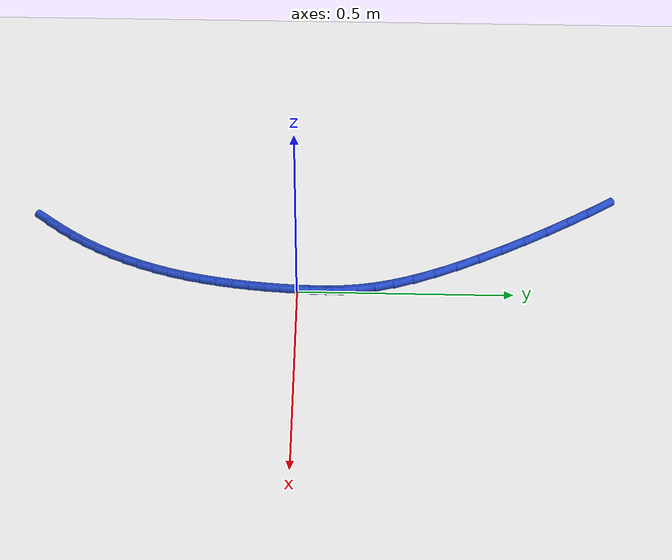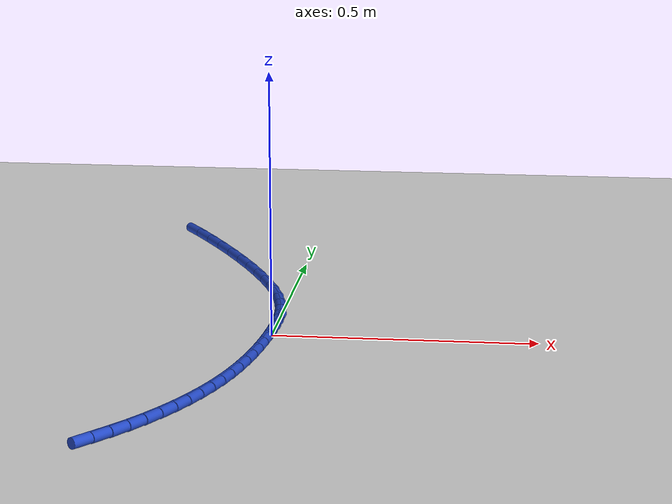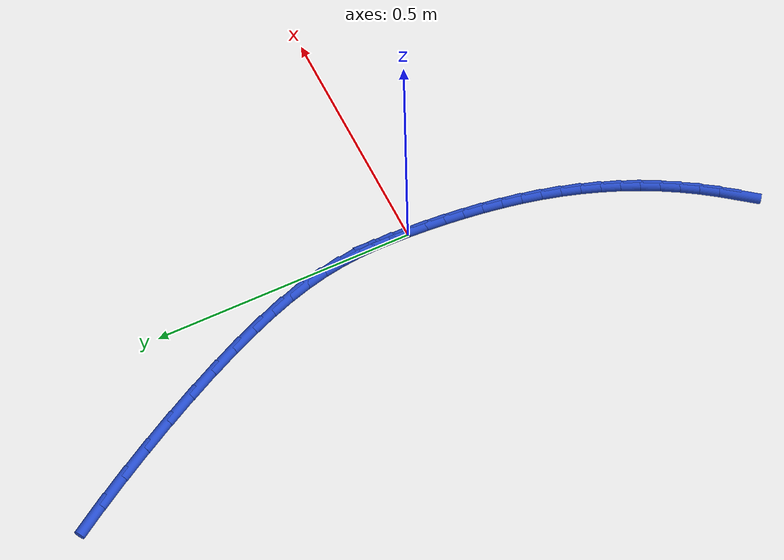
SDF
<sdf version="1.6">
 <world name="default">
  <model name="ground_plane">
   <static>1</static>
   <link name="link">
    <collision name="collision">
     <geometry><plane><normal>0 0 1</normal><size>100 100</size></plane></geometry>
     <surface><friction><ode><mu>100</mu><mu2>50</mu2></ode></friction></surface>
    </collision>
    <visual name="visual">
     <cast_shadows>0</cast_shadows>
     <geometry><plane><normal>0 0 1</normal><size>100 100</size></plane></geometry>
     <material>
      <script><uri>file://media/materials/scripts/gazebo.material</uri><name>Gazebo/WhiteGlow</name></script>
     </material>
    </visual>
   </link>
  </model>
  <model name="line">
   <link name="link_0">
    <pose>-2.3852447794681098e-18 -3.469446951953614e-17 0.01 0 1.57 1.536568361687277</pose>
    <collision name="collision">
     <geometry><cylinder><radius>0.01</radius><length>0.08</length></cylinder></geometry>
    </collision>
    <visual name="visual">
     <material>
      <script><name>Gazebo/Blue</name><uri>file://media/materials/scripts/gazebo.material</uri></script>
     </material>
     <geometry><cylinder><radius>0.01</radius><length>0.08</length></cylinder></geometry>
    </visual>
   </link>
   <link name="link_1">
    <pose>0.0012004082090740472 0.03505728102247837 0.01 0 1.57 1.5704771272439422</pose>
    <collision name="collision">
     <geometry><cylinder><radius>0.01</radius><length>0.08</length></cylinder></geometry>
    </collision>
    <visual name="visual">
     <material>
      <script><name>Gazebo/Blue</name><uri>file://media/materials/scripts/gazebo.material</uri></script>
     </material>
     <geometry><cylinder><radius>0.01</radius><length>0.08</length></cylinder></geometry>
    </visual>
   </link>
   <link name="link_2">
    <pose>0.0012114562269414874 0.06966891333582405 0.01 0 1.57 -1.5240608467342291</pose>
    <collision name="collision">
     <geometry><cylinder><radius>0.01</radius><length>0.08</length></cylinder></geometry>
    </collision>
    <visual name="visual">
     <material>
      <script><name>Gazebo/Blue</name><uri>file://media/materials/scripts/gazebo.material</uri></script>
     </material>
     <geometry><cylinder><radius>0.01</radius><length>0.08</length></cylinder></geometry>
    </visual>
   </link>
   <link name="link_3">
    <pose>-0.00041627181827382734 0.10447208157554808 0.01 0 1.57 -1.4668855793598907</pose>
    <collision name="collision">
     <geometry><cylinder><radius>0.01</radius><length>0.08</length></cylinder></geometry>
    </collision>
    <visual name="visual">
     <material>
      <script><name>Gazebo/Blue</name><uri>file://media/materials/scripts/gazebo.material</uri></script>
     </material>
     <geometry><cylinder><radius>0.01</radius><length>0.08</length></cylinder></geometry>
    </visual>
   </link>
   <link name="link_4">
    <pose>-0.004132191798448034 0.14010397037716163 0.01 0 1.57 -1.4037975720328413</pose>
    <collision name="collision">
     <geometry><cylinder><radius>0.01</radius><length>0.08</length></cylinder></geometry>
    </collision>
    <visual name="visual">
     <material>
      <script><name>Gazebo/Blue</name><uri>file://media/materials/scripts/gazebo.material</uri></script>
     </material>
     <geometry><cylinder><radius>0.01</radius><length>0.08</length></cylinder></geometry>
    </visual>
   </link>
   <link name="link_5">
    <pose>-0.010385719585457281 0.1772017643761758 0.01 0 1.57 -1.3392992779858215</pose>
    <collision name="collision">
     <geometry><cylinder><radius>0.01</radius><length>0.08</length></cylinder></geometry>
    </collision>
    <visual name="visual">
     <material>
      <script><name>Gazebo/Blue</name><uri>file://media/materials/scripts/gazebo.material</uri></script>
     </material>
     <geometry><cylinder><radius>0.01</radius><length>0.08</length></cylinder></geometry>
    </visual>
   </link>
   <link name="link_6">
    <pose>-0.019626271051177705 0.21640264820810165 0.01 0 1.57 -1.27727056453285</pose>
    <collision name="collision">
     <geometry><cylinder><radius>0.01</radius><length>0.08</length></cylinder></geometry>
    </collision>
    <visual name="visual">
     <material>
      <script><name>Gazebo/Blue</name><uri>file://media/materials/scripts/gazebo.material</uri></script>
     </material>
     <geometry><cylinder><radius>0.01</radius><length>0.08</length></cylinder></geometry>
    </visual>
   </link>
   <link name="link_7">
    <pose>-0.03230326206748544 0.25834380650845035 0.01 0 1.57 -1.2205641338085151</pose>
    <collision name="collision">
     <geometry><cylinder><radius>0.01</radius><length>0.08</length></cylinder></geometry>
    </collision>
    <visual name="visual">
     <material>
      <script><name>Gazebo/Blue</name><uri>file://media/materials/scripts/gazebo.material</uri></script>
     </material>
     <geometry><cylinder><radius>0.01</radius><length>0.08</length></cylinder></geometry>
    </visual>
   </link>
   <link name="link_8">
    <pose>-0.04884852828851498 0.3036371119326895 0.01 0 1.57 -1.1735904179650758</pose>
    <collision name="collision">
     <geometry><cylinder><radius>0.01</radius><length>0.08</length></cylinder></geometry>
    </collision>
    <visual name="visual">
     <material>
      <script><name>Gazebo/Blue</name><uri>file://media/materials/scripts/gazebo.material</uri></script>
     </material>
     <geometry><cylinder><radius>0.01</radius><length>0.08</length></cylinder></geometry>
    </visual>
   </link>
   <link name="link_9">
    <pose>-0.06923492894647816 0.35223360333986514 0.01 0 1.57 -1.1367071508104774</pose>
    <collision name="collision">
     <geometry><cylinder><radius>0.01</radius><length>0.08</length></cylinder></geometry>
    </collision>
    <visual name="visual">
     <material>
      <script><name>Gazebo/Blue</name><uri>file://media/materials/scripts/gazebo.material</uri></script>
     </material>
     <geometry><cylinder><radius>0.01</radius><length>0.08</length></cylinder></geometry>
    </visual>
   </link>
   <link name="link_10">
    <pose>-0.09294377362127791 0.4033765868878439 0.01 0 1.57 -1.1065521909593512</pose>
    <collision name="collision">
     <geometry><cylinder><radius>0.01</radius><length>0.08</length></cylinder></geometry>
    </collision>
    <visual name="visual">
     <material>
      <script><name>Gazebo/Blue</name><uri>file://media/materials/scripts/gazebo.material</uri></script>
     </material>
     <geometry><cylinder><radius>0.01</radius><length>0.08</length></cylinder></geometry>
    </visual>
   </link>
   <link name="link_11">
    <pose>-0.11943226742696403 0.456274663148498 0.01 0 1.57 -1.0808524294786641</pose>
    <collision name="collision">
     <geometry><cylinder><radius>0.01</radius><length>0.08</length></cylinder></geometry>
    </collision>
    <visual name="visual">
     <material>
      <script><name>Gazebo/Blue</name><uri>file://media/materials/scripts/gazebo.material</uri></script>
     </material>
     <geometry><cylinder><radius>0.01</radius><length>0.08</length></cylinder></geometry>
    </visual>
   </link>
   <link name="link_12">
    <pose>-0.1481576154775864 0.5101364326936998 0.01 0 1.57 -1.0580520031457787</pose>
    <collision name="collision">
     <geometry><cylinder><radius>0.01</radius><length>0.08</length></cylinder></geometry>
    </collision>
    <visual name="visual">
     <material>
      <script><name>Gazebo/Blue</name><uri>file://media/materials/scripts/gazebo.material</uri></script>
     </material>
     <geometry><cylinder><radius>0.01</radius><length>0.08</length></cylinder></geometry>
    </visual>
   </link>
   <link name="link_13">
    <pose>-0.17857702288719468 0.5641704960953212 0.01 0 1.57 -1.0369870157645538</pose>
    <collision name="collision">
     <geometry><cylinder><radius>0.01</radius><length>0.08</length></cylinder></geometry>
    </collision>
    <visual name="visual">
     <material>
      <script><name>Gazebo/Blue</name><uri>file://media/materials/scripts/gazebo.material</uri></script>
     </material>
     <geometry><cylinder><radius>0.01</radius><length>0.08</length></cylinder></geometry>
    </visual>
   </link>
   <link name="link_14">
    <pose>-0.21014769476983877 0.6175854539252348 0.01 0 1.57 -1.016684746605305</pose>
    <collision name="collision">
     <geometry><cylinder><radius>0.01</radius><length>0.08</length></cylinder></geometry>
    </collision>
    <visual name="visual">
     <material>
      <script><name>Gazebo/Blue</name><uri>file://media/materials/scripts/gazebo.material</uri></script>
     </material>
     <geometry><cylinder><radius>0.01</radius><length>0.08</length></cylinder></geometry>
    </visual>
   </link>
   <link name="link_15">
    <pose>-0.2423268362395684 0.6695899067553124 0.01 0 1.57 -0.99621360401622</pose>
    <collision name="collision">
     <geometry><cylinder><radius>0.01</radius><length>0.08</length></cylinder></geometry>
    </collision>
    <visual name="visual">
     <material>
      <script><name>Gazebo/Blue</name><uri>file://media/materials/scripts/gazebo.material</uri></script>
     </material>
     <geometry><cylinder><radius>0.01</radius><length>0.08</length></cylinder></geometry>
    </visual>
   </link>
   <link name="link_16">
    <pose>-0.2745716524104334 0.7193924551574266 0.01 0 1.57 -0.9745345805380871</pose>
    <collision name="collision">
     <geometry><cylinder><radius>0.01</radius><length>0.08</length></cylinder></geometry>
    </collision>
    <visual name="visual">
     <material>
      <script><name>Gazebo/Blue</name><uri>file://media/materials/scripts/gazebo.material</uri></script>
     </material>
     <geometry><cylinder><radius>0.01</radius><length>0.08</length></cylinder></geometry>
    </visual>
   </link>
   <link name="link_203">
    <pose>-0.20289735376096224 -0.5993440263563532 0.01 0 1.57 0.9063151022787703</pose>
    <collision name="collision">
     <geometry><cylinder><radius>0.01</radius><length>0.08</length></cylinder></geometry>
    </collision>
    <visual name="visual">
     <material>
      <script><name>Gazebo/Blue</name><uri>file://media/materials/scripts/gazebo.material</uri></script>
     </material>
     <geometry><cylinder><radius>0.01</radius><length>0.08</length></cylinder></geometry>
    </visual>
   </link>
   <link name="link_204">
    <pose>-0.17961356380585672 -0.5696191712643123 0.01 0 1.57 0.9479238183186444</pose>
    <collision name="collision">
     <geometry><cylinder><radius>0.01</radius><length>0.08</length></cylinder></geometry>
    </collision>
    <visual name="visual">
     <material>
      <script><name>Gazebo/Blue</name><uri>file://media/materials/scripts/gazebo.material</uri></script>
     </material>
     <geometry><cylinder><radius>0.01</radius><length>0.08</length></cylinder></geometry>
    </visual>
   </link>
   <link name="link_205">
    <pose>-0.1576266381050736 -0.539007560793921 0.01 0 1.57 0.9949693671722737</pose>
    <collision name="collision">
     <geometry><cylinder><radius>0.01</radius><length>0.08</length></cylinder></geometry>
    </collision>
    <visual name="visual">
     <material>
      <script><name>Gazebo/Blue</name><uri>file://media/materials/scripts/gazebo.material</uri></script>
     </material>
     <geometry><cylinder><radius>0.01</radius><length>0.08</length></cylinder></geometry>
    </visual>
   </link>
   <link name="link_206">
    <pose>-0.13710704897695417 -0.5074010526343191 0.01 0 1.57 1.0422748961181398</pose>
    <collision name="collision">
     <geometry><cylinder><radius>0.01</radius><length>0.08</length></cylinder></geometry>
    </collision>
    <visual name="visual">
     <material>
      <script><name>Gazebo/Blue</name><uri>file://media/materials/scripts/gazebo.material</uri></script>
     </material>
     <geometry><cylinder><radius>0.01</radius><length>0.08</length></cylinder></geometry>
    </visual>
   </link>
   <link name="link_207">
    <pose>-0.11808498806603555 -0.4748252692505067 0.01 0 1.57 1.0887178488343559</pose>
    <collision name="collision">
     <geometry><cylinder><radius>0.01</radius><length>0.08</length></cylinder></geometry>
    </collision>
    <visual name="visual">
     <material>
      <script><name>Gazebo/Blue</name><uri>file://media/materials/scripts/gazebo.material</uri></script>
     </material>
     <geometry><cylinder><radius>0.01</radius><length>0.08</length></cylinder></geometry>
    </visual>
   </link>
   <link name="link_208">
    <pose>-0.10056069990168612 -0.44133438920890716 0.01 0 1.57 1.134278374754721</pose>
    <collision name="collision">
     <geometry><cylinder><radius>0.01</radius><length>0.08</length></cylinder></geometry>
    </collision>
    <visual name="visual">
     <material>
      <script><name>Gazebo/Blue</name><uri>file://media/materials/scripts/gazebo.material</uri></script>
     </material>
     <geometry><cylinder><radius>0.01</radius><length>0.08</length></cylinder></geometry>
    </visual>
   </link>
   <link name="link_209">
    <pose>-0.08453442901327271 -0.4069825910759407 0.01 0 1.57 1.1789505052005982</pose>
    <collision name="collision">
     <geometry><cylinder><radius>0.01</radius><length>0.08</length></cylinder></geometry>
    </collision>
    <visual name="visual">
     <material>
      <script><name>Gazebo/Blue</name><uri>file://media/materials/scripts/gazebo.material</uri></script>
     </material>
     <geometry><cylinder><radius>0.01</radius><length>0.08</length></cylinder></geometry>
    </visual>
   </link>
   <link name="link_210">
    <pose>-0.07000641993016275 -0.3718240534180293 0.01 0 1.57 1.2227406788263113</pose>
    <collision name="collision">
     <geometry><cylinder><radius>0.01</radius><length>0.08</length></cylinder></geometry>
    </collision>
    <visual name="visual">
     <material>
      <script><name>Gazebo/Blue</name><uri>file://media/materials/scripts/gazebo.material</uri></script>
     </material>
     <geometry><cylinder><radius>0.01</radius><length>0.08</length></cylinder></geometry>
    </visual>
   </link>
   <link name="link_211">
    <pose>-0.0569769171817236 -0.3359129548015943 0.01 0 1.57 1.2656661826491518</pose>
    <collision name="collision">
     <geometry><cylinder><radius>0.01</radius><length>0.08</length></cylinder></geometry>
    </collision>
    <visual name="visual">
     <material>
      <script><name>Gazebo/Blue</name><uri>file://media/materials/scripts/gazebo.material</uri></script>
     </material>
     <geometry><cylinder><radius>0.01</radius><length>0.08</length></cylinder></geometry>
    </visual>
   </link>
   <link name="link_212">
    <pose>-0.045446165297322406 -0.29930347379305616 0.01 0 1.57 1.307663954676893</pose>
    <collision name="collision">
     <geometry><cylinder><radius>0.01</radius><length>0.08</length></cylinder></geometry>
    </collision>
    <visual name="visual">
     <material>
      <script><name>Gazebo/Blue</name><uri>file://media/materials/scripts/gazebo.material</uri></script>
     </material>
     <geometry><cylinder><radius>0.01</radius><length>0.08</length></cylinder></geometry>
    </visual>
   </link>
   <link name="link_213">
    <pose>-0.03541195238888967 -0.26205396453347507 0.01 0 1.57 1.3470342131046116</pose>
    <collision name="collision">
     <geometry><cylinder><radius>0.01</radius><length>0.08</length></cylinder></geometry>
    </collision>
    <visual name="visual">
     <material>
      <script><name>Gazebo/Blue</name><uri>file://media/materials/scripts/gazebo.material</uri></script>
     </material>
     <geometry><cylinder><radius>0.01</radius><length>0.08</length></cylinder></geometry>
    </visual>
   </link>
   <link name="link_214">
    <pose>-0.026821974143796033 -0.22430793145404096 0.01 0 1.57 1.3824986068345817</pose>
    <collision name="collision">
     <geometry><cylinder><radius>0.01</radius><length>0.08</length></cylinder></geometry>
    </collision>
    <visual name="visual">
     <material>
      <script><name>Gazebo/Blue</name><uri>file://media/materials/scripts/gazebo.material</uri></script>
     </material>
     <geometry><cylinder><radius>0.01</radius><length>0.08</length></cylinder></geometry>
    </visual>
   </link>
   <link name="link_215">
    <pose>-0.019577153269955468 -0.18628838667211078 0.01 0 1.57 1.414451955444861</pose>
    <collision name="collision">
     <geometry><cylinder><radius>0.01</radius><length>0.08</length></cylinder></geometry>
    </collision>
    <visual name="visual">
     <material>
      <script><name>Gazebo/Blue</name><uri>file://media/materials/scripts/gazebo.material</uri></script>
     </material>
     <geometry><cylinder><radius>0.01</radius><length>0.08</length></cylinder></geometry>
    </visual>
   </link>
   <link name="link_216">
    <pose>-0.013576620925380723 -0.14822138769554025 0.01 0 1.57 1.4432964791874452</pose>
    <collision name="collision">
     <geometry><cylinder><radius>0.01</radius><length>0.08</length></cylinder></geometry>
    </collision>
    <visual name="visual">
     <material>
      <script><name>Gazebo/Blue</name><uri>file://media/materials/scripts/gazebo.material</uri></script>
     </material>
     <geometry><cylinder><radius>0.01</radius><length>0.08</length></cylinder></geometry>
    </visual>
   </link>
   <link name="link_217">
    <pose>-0.008719508268085006 -0.1103329920321879 0.01 0 1.57 1.4693796767742267</pose>
    <collision name="collision">
     <geometry><cylinder><radius>0.01</radius><length>0.08</length></cylinder></geometry>
    </collision>
    <visual name="visual">
     <material>
      <script><name>Gazebo/Blue</name><uri>file://media/materials/scripts/gazebo.material</uri></script>
     </material>
     <geometry><cylinder><radius>0.01</radius><length>0.08</length></cylinder></geometry>
    </visual>
   </link>
   <link name="link_218">
    <pose>-0.00490494645608105 -0.07284925718990944 0.01 0 1.57 1.4929985855008832</pose>
    <collision name="collision">
     <geometry><cylinder><radius>0.01</radius><length>0.08</length></cylinder></geometry>
    </collision>
    <visual name="visual">
     <material>
      <script><name>Gazebo/Blue</name><uri>file://media/materials/scripts/gazebo.material</uri></script>
     </material>
     <geometry><cylinder><radius>0.01</radius><length>0.08</length></cylinder></geometry>
    </visual>
   </link>
   <link name="link_219">
    <pose>-0.0020320666473817566 -0.03599624067656147 0.01 0 1.57 1.5144039897906345</pose>
    <collision name="collision">
     <geometry><cylinder><radius>0.01</radius><length>0.08</length></cylinder></geometry>
    </collision>
    <visual name="visual">
     <material>
      <script><name>Gazebo/Blue</name><uri>file://media/materials/scripts/gazebo.material</uri></script>
     </material>
     <geometry><cylinder><radius>0.01</radius><length>0.08</length></cylinder></geometry>
    </visual>
   </link>
   <link name="link_220">
    <pose>1.463672932855431e-17 1.8041124150158794e-16 0.01 0 1.57 1.5338038653100574</pose>
    <collision name="collision">
     <geometry><cylinder><radius>0.01</radius><length>0.08</length></cylinder></geometry>
    </collision>
    <visual name="visual">
     <material>
      <script><name>Gazebo/Blue</name><uri>file://media/materials/scripts/gazebo.material</uri></script>
     </material>
     <geometry><cylinder><radius>0.01</radius><length>0.08</length></cylinder></geometry>
    </visual>
   </link>
   <link name="link_221">
    <pose>0.0012921223280512398 0.03491340733191628 0.01 0 1.57 1.5513654666222692</pose>
    <collision name="collision">
     <geometry><cylinder><radius>0.01</radius><length>0.08</length></cylinder></geometry>
    </collision>
    <visual name="visual">
     <material>
      <script><name>Gazebo/Blue</name><uri>file://media/materials/scripts/gazebo.material</uri></script>
     </material>
     <geometry><cylinder><radius>0.01</radius><length>0.08</length></cylinder></geometry>
    </visual>
   </link>
   <link name="link_222">
    <pose>0.0019451691787591475 0.06851792381133356 0.01 0 1.57 1.5424147478514472</pose>
    <collision name="collision">
     <geometry><cylinder><radius>0.01</radius><length>0.08</length></cylinder></geometry>
    </collision>
    <visual name="visual">
     <material>
      <script><name>Gazebo/Blue</name><uri>file://media/materials/scripts/gazebo.material</uri></script>
     </material>
     <geometry><cylinder><radius>0.01</radius><length>0.08</length></cylinder></geometry>
    </visual>
   </link>
  </model>
 </world>
</sdf>
